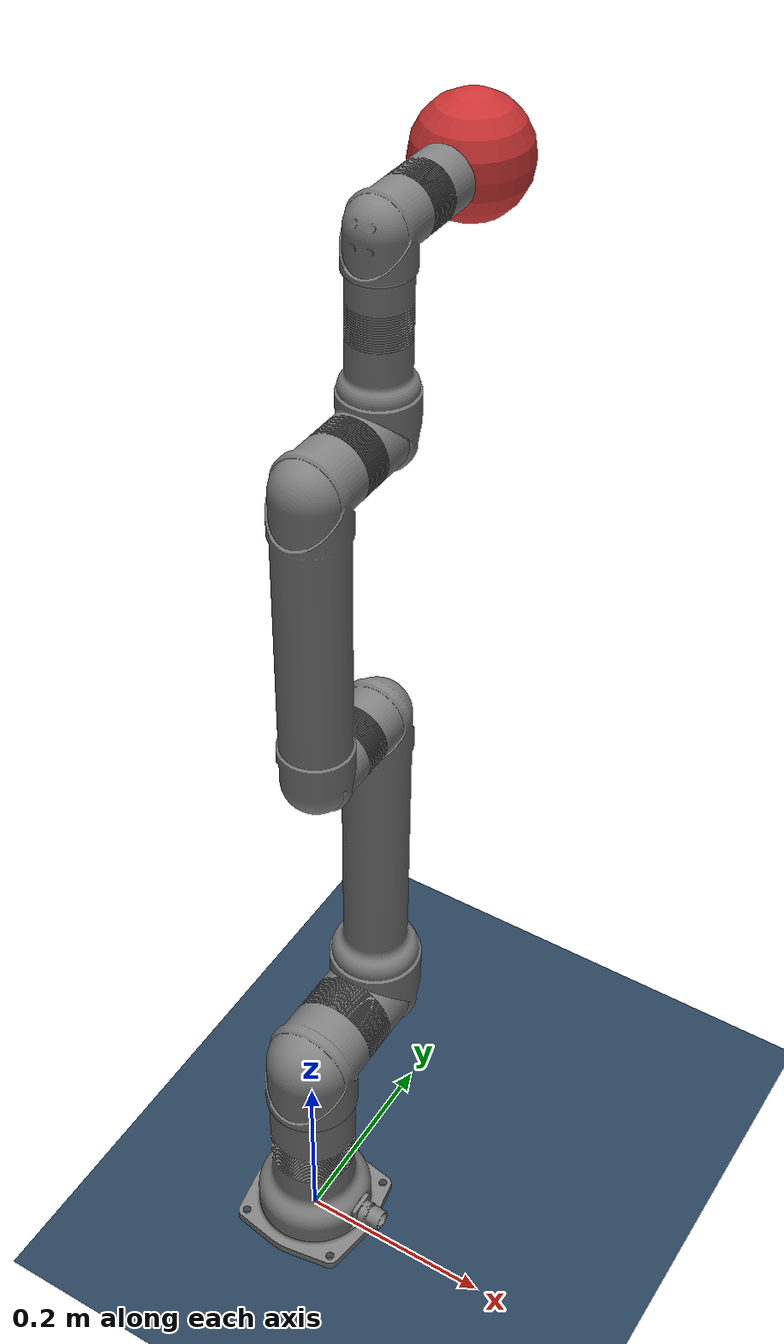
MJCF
<mujoco model="6dof_robot">
  <option timestep="0.002" gravity="0 0 -9.81" integrator="implicitfast" density="1.225"/>
   <compiler angle="radian" meshdir="parts"/>
  <statistic center="0 1 1" extent="2"/>

  <visual>
    <headlight diffuse="0.6 0.6 0.6" ambient="0.3 0.3 0.3" specular="0 0 0"/>
    <rgba haze="0.15 0.25 0.35 1"/>
    <global azimuth="120" elevation="-20"/>
  </visual>

  <asset>
    <!-- Подключаем файлы геометрии -->
    <mesh name="base_mesh" file="base.stl"/>
    <mesh name="link1_mesh" file="link1.stl"/>
    <mesh name="link2_mesh" file="link2.stl"/>
    <mesh name="link3_mesh" file="link3.stl"/>
    <mesh name="link4_mesh" file="link4.stl"/>
    <mesh name="link5_mesh" file="link5.stl"/>
    <mesh name="link6_mesh" file="link6.stl"/>
    <mesh name="endEffector_mesh" file="endEffector.stl"/>

    <!-- Текстура для пола -->
    <texture name="grid" type="2d" builtin="checker" width="512" height="512" rgb1="0.1 0.2 0.3" rgb2="0.2 0.3 0.4"/>
    <material name="floor_mat" texture="grid" texrepeat="1 1" texuniform="true" reflectance="0.2"/>
  </asset>

  <worldbody>

    <!-- Освещение -->
    <light pos="0 0 1.5" dir="0 0 -1" directional="true"/>

    <camera
    name="overview"
    pos="0 -2 0.8"
    xyaxes="1 0 0   0 0 1"
/>

     <!-- Пол - плоскость размером 10x10 метров -->
    <geom name="floor" type="plane" size="1 1 0.05" pos="0 0 0" material="floor_mat" rgba="0.5 0.5 0.5 1"/>

    <!-- База (закреплена) -->
    <body name="base">
      <geom type="mesh" mesh="base_mesh" name="base_geom"/>

         <!-- Звено 1 -->
        <body name="link1" pos="0 0 0.016">
          <inertial pos="0.00056  0 0.07344" mass="2.896" diaginertia="0.0096036 0.0097093 0.003711 "/>
          <geom type="mesh" mesh="link1_mesh" name="link1_geom"/>

            <!-- Звено 2 -->
          <body name="link2" pos="0 0 0.232">
            <inertial pos="0.0 0.05005 -0.0055" mass="2.164" diaginertia="0.0051147 0.0025546 0.0048539"/>
            <joint name='joint1' range='-3.1415 3.1415' damping="0.5"/>
            <geom type="mesh" mesh="link2_mesh" name="link2_geom"/>

            <!-- Звено 3 -->
            <body name="link3" pos="0 0.1205 0">
              <inertial pos="0 -0.008 0.2127" mass="3.732" diaginertia="0.0651410 0.0635245 0.0040818"/>
              <joint name="joint2" axis='0 1 0' range='-3.1415 3.1415' damping="0.4"/>
              <geom type="mesh" mesh="link3_mesh" name="link3_geom"/>

              <!-- Звено 4 -->
              <body name="link4" pos='0 -0.0975 0.375'>
                <inertial pos="0 0.01117 0.18745" mass="2.821" diaginertia="0.0289611 0.0272949 0.0031766"/>
                <joint name="joint3" type="hinge" range='-2.7925 2.7925' axis='0 1 0' damping="0.6"/>
                <geom type="mesh" mesh="link4_mesh" name="link4_geom"/>

                  <!-- Звено 5 -->
                <body name="link5" pos="0 0.0975 0.295">
                  <inertial pos="0.0 0.00029 0.06847" mass="0.774" diaginertia="0.0017398  0.0017792 0.0003276"/>
                  <joint name="joint4" axis='0 1 0' range='-3.1415 3.1415' damping="0.3"/>
                  <geom type="mesh" mesh="link5_mesh" name="link5_geom"/>

                  <!-- Звено 6 -->
                  <body name="link6" pos='0 0 0.171'>
                    <inertial pos="0 0.03163 -0.00454" mass="0.664" diaginertia="0.0009562 0.0002862 0.0009180"/>
                    <joint name="joint5" range='-3.1415 3.1415' damping="0.5"/>
                    <geom type="mesh" mesh="link6_mesh" name="link6_geom"/>

                      <!-- ендэффектор -->
                    <body name="end-effector" pos='0 0.1225 0'>
                      <inertial pos="0 -0.004132 0.0011" mass="0.176" diaginertia="0.0000699 0.0000853 0.0000677"/>
                      <geom type="mesh" mesh="endEffector_mesh" name="endeffector"/>

                      <!-- Шар-имитатор нагрузки -->
                      <body name="payload" pos="0 0.01 0"> <!-- смещаем немного от центра ендэффектора -->
                        <inertial mass="0.5" pos="0 0 0" diaginertia="0.0003125 0.0003125  0.0003125 "/>
                        <geom type="sphere" size="0.05" rgba="0.8 0.2 0.2 1"/> <!-- красный шар -->
                      </body>
                    </body>

                  </body>
                </body>
              </body>
            </body>
          </body>
        </body>
    </body>
  </worldbody>

<actuator>
  <motor name="act_joint1" joint="joint1"
         gear="1" ctrllimited="true" ctrlrange="-300 300"/>
  <motor name="act_joint2" joint="joint2"
         gear="1" ctrllimited="true" ctrlrange="-300 300"/>
  <motor name="act_joint3" joint="joint3"
         gear="1" ctrllimited="true" ctrlrange="-240 120"/>
  <motor name="act_joint4" joint="joint4"
         gear="1" ctrllimited="true" ctrlrange="-180 180"/>
  <motor name="act_joint5" joint="joint5"
         gear="1" ctrllimited="true" ctrlrange="-120 120"/>
</actuator>

</mujoco>
